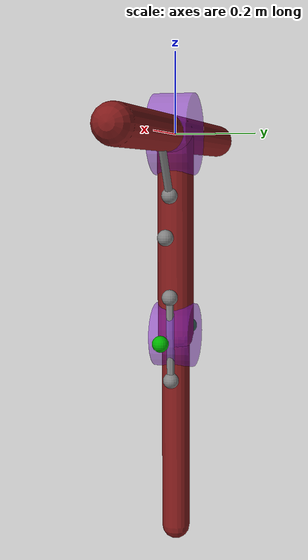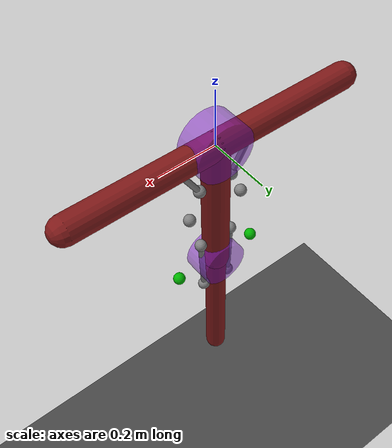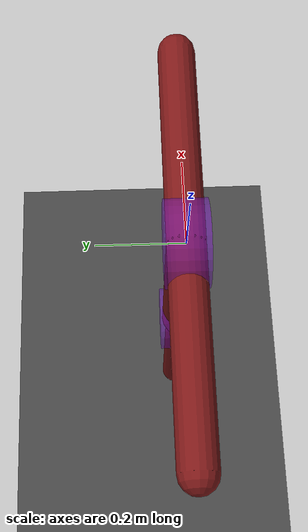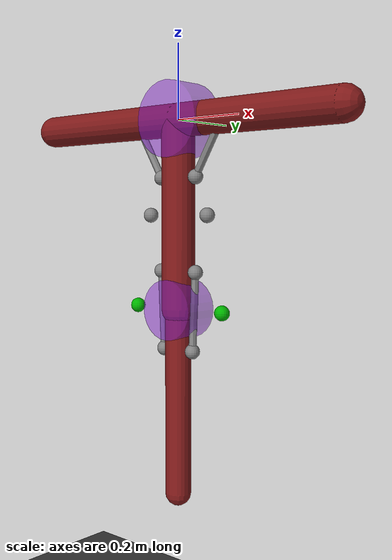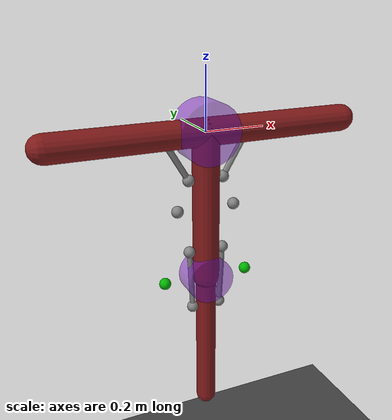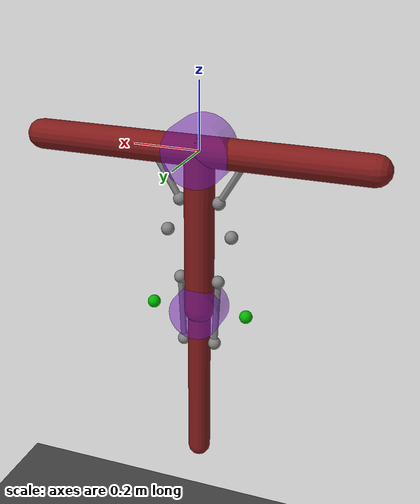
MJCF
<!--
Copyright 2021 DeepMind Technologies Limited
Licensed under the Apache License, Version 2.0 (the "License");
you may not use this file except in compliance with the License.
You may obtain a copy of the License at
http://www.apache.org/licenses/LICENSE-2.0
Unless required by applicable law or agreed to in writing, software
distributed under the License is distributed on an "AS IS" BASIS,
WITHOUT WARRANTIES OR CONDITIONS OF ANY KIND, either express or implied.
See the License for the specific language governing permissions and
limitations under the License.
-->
<mujoco model="2-link 6-muscle leg">
  <compiler angle="radian" meshdir="assets" autolimits="true"/>
  <option timestep="0.005" iterations="50" solver="Newton" tolerance="1e-10"/>

  <visual>
    <rgba haze=".3 .3 .3 1"/>
  </visual>

  <default>
    <joint type="hinge" pos="0 0 0" axis="0 -1 0" limited="true" range="-1.047 1.047" damping="0.1"/>
    <general dyntype="none" biastype="affine" ctrlrange="-1.047 1.047" forcerange="-87 87"/>
  </default>

  <asset>
    <texture type="skybox" builtin="gradient" rgb1="0.6 0.6 0.6" rgb2="0 0 0" width="512" height="512"/>
    <texture name="texplane" type="2d" builtin="checker" rgb1=".25 .25 .25" rgb2=".3 .3 .3" width="512" height="512" mark="cross" markrgb=".8 .8 .8"/>
    <material name="matplane" reflectance="0.3" texture="texplane" texrepeat="1 1" texuniform="true"/>
  </asset>

  <worldbody>
    <geom name="floor" pos="0 0 -1.5" size="0 0 1" type="plane" material="matplane"/>

    <light directional="true" diffuse=".8 .8 .8" specular=".2 .2 .2" pos="0 0 5" dir="0 0 -1"/>

    <body pos="0 0 0">
      <joint name="world_joint_TY" pos="0 0 0" axis="0 0 -1" type="slide"/>
      <inertial mass="8" pos="0 0 0"
        diaginertia="0.003575 0.6639 0.6639"/>
      <geom name="trunk" type="capsule" size="0.045" fromto="-0.5 0 0  0.5 0 0" rgba=".5 .1 .1 1"/>
      <site name="s0" pos="-0.15 0 0" size="0.02"/>
      <site name="s1" pos=" 0.15 0 0" size="0.02"/>
      <site name="x1" pos=" 0.15 0 0" size="0.02" rgba="0 .7 0 1" group="1"/>
      <site name="x0" pos="-0.15 0 0" size="0.02" rgba="0 .7 0 1" group="1"/>

      <body pos="0 0 0">
        <inertial mass="0.6" pos="0 0 -0.25"
          diaginertia="0.004503 0.004503 0.000067036"/>
        <geom name="upper_leg" type="capsule" size="0.045" fromto="0 0 0  0 0 -0.5" rgba=".5 .1 .1 1"/>
        <joint name="hip"/>
        <geom name="hip" type="cylinder" pos="0 0 0" size=".1 .05" quat="0.7071068 0.7071068 0 0" rgba=".5 .1 .8 .5" mass="0" group="1"/>

        <site name="s2" pos="-0.06 0 -0.15" size="0.02"/>
        <site name="s3" pos=" 0.06 0 -0.15" size="0.02"/>
        <site name="s4" pos="-0.06 0 -0.4" size="0.02"/>
        <site name="s5" pos=" 0.06 0 -0.4" size="0.02"/>
        <site name="s6" pos="-0.1 0 -0.25" size="0.02"/>
        <site name="s7" pos=" 0.1 0 -0.25" size="0.02"/>
        <site name="x3" pos=" 0.15 0 -0.5" size="0.02" rgba="0 .7 0 1" group="1"/>
        <site name="x2" pos="-0.15 0 -0.5" size="0.02" rgba="0 .7 0 1" group="1"/>

        <body pos="0 0 -0.5">
          <inertial mass="0.6" pos="0 0 -0.25"
            diaginertia="0.004503 0.004503 0.000067036"/>
          <geom name="lower_leg" type="capsule" size="0.035" fromto="0 0 0  0 0 -0.5" rgba=".5 .1 .1 1"/>
          <joint name="knee" range="-2.4 0"/>
          <geom name="knee" type="cylinder" pos="0 0 0" size=".08 .05" quat="0.7071068 0.7071068 0 0" rgba=".5 .1 .8 .5" mass="0" group="1"/>

          <site name="s8" pos="-0.05 0 -0.11" size="0.02"/>
          <site name="s9" pos=" 0.05 0 -0.11" size="0.02"/>
        </body>
      </body>
    </body>
  </worldbody>

  <tendon>
    <spatial name="HF" width="0.01">
      <site site="s1"/>
      <geom geom="hip" sidesite="x1"/>
      <site site="s3"/>
    </spatial>

    <spatial name="HE" width="0.01">
      <site site="s0"/>
      <geom geom="hip" sidesite="x0"/>
      <site site="s2"/>
    </spatial>

    <spatial name="KF" width="0.01">
      <site site="s4"/>
      <geom geom="knee" sidesite="x2"/>
      <site site="s8"/>
    </spatial>

    <spatial name="KE" width="0.01">
      <site site="s5"/>
      <geom geom="knee" sidesite="x3"/>
      <site site="s9"/>
    </spatial>

  </tendon>

  <sensor>
    <tendonpos name="HF"  tendon="HF"/>
    <tendonpos name="HE"  tendon="HE"/>
    <tendonpos name="KF"  tendon="KF"/>
    <tendonpos name="KE"  tendon="KE"/>
  </sensor>

  <actuator>
    <!-- torque -->
    <motor name="actuator_hip" joint="hip"  gear="1" ctrllimited="true" ctrlrange="-100 100"/>
    <motor name="actuator_knee" joint="knee"  gear="1" ctrllimited="true" ctrlrange="-100 100"/>
  </actuator>
  <keyframe>
    <key name="initial" qpos="0 0.7853 -1.5708" ctrl="0.0 0.0"/>
  </keyframe>
</mujoco>
